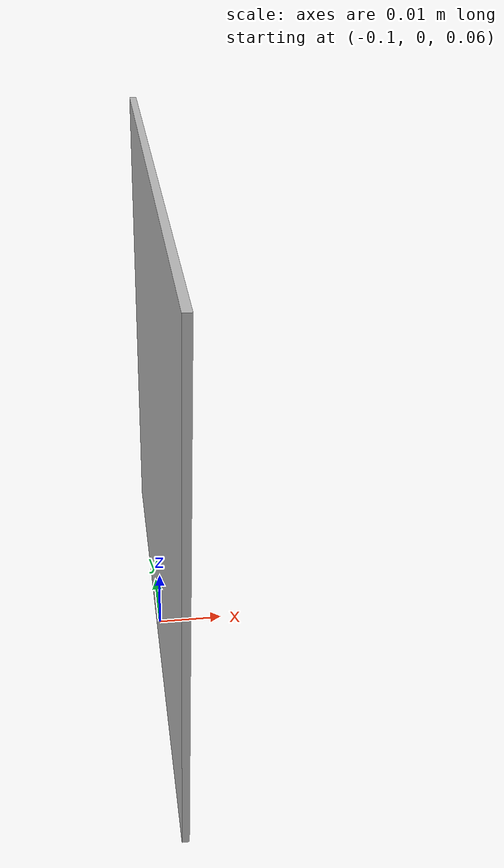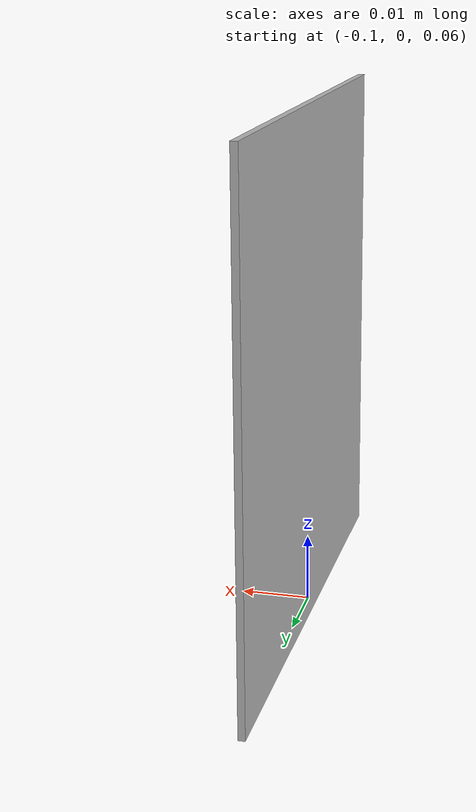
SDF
<?xml version='1.0'?>
<sdf version='1.7'>
  <model name='apriltag'>
    <link name='base_footprint'>
      <self_collide>0</self_collide>
      <inertial>
        <pose>0 0 0 0 -0 0</pose>
        <inertia>
          <ixx>1</ixx>
          <ixy>0</ixy>
          <ixz>0</ixz>
          <iyy>1</iyy>
          <iyz>0</iyz>
          <izz>1</izz>
        </inertia>
        <mass>1</mass>
      </inertial>
      <enable_wind>0</enable_wind>
      <kinematic>0</kinematic>
      <pose>0 0 0 0 -0 0</pose>
    </link>
    <link name='base_link'>
      <inertial>
        <pose>-0.032 0 0.07 0 -0 0</pose>
        <inertia>
          <ixx>0.723974</ixx>
          <ixy>4.6864e-10</ixy>
          <ixz>-1.09526e-08</ixz>
          <iyy>0.723974</iyy>
          <iyz>2.85826e-09</iyz>
          <izz>0.65305</izz>
        </inertia>
        <mass>0.825735</mass>
      </inertial>
      <self_collide>0</self_collide>
      <enable_wind>0</enable_wind>
      <kinematic>0</kinematic>
      <pose>0 0 0 0 -0 0</pose>
      <collision name='base_collision'>
        <laser_retro>0</laser_retro>
        <max_contacts>10</max_contacts>
        <pose>-0.032 0 0.07 0 -0 0</pose>
        <geometry>
          <box>
            <size>0.14 0.14 0.14</size>
          </box>
        </geometry>
        <surface>
          <friction>
            <ode>
              <mu>1</mu>
              <mu2>1</mu2>
              <fdir1>0 0 0</fdir1>
              <slip1>0</slip1>
              <slip2>0</slip2>
            </ode>
            <torsional>
              <coefficient>1</coefficient>
              <patch_radius>0</patch_radius>
              <surface_radius>0</surface_radius>
              <use_patch_radius>1</use_patch_radius>
              <ode>
                <slip>0</slip>
              </ode>
            </torsional>
          </friction>
          <bounce>
            <restitution_coefficient>0</restitution_coefficient>
            <threshold>1e+06</threshold>
          </bounce>
          <contact>
            <collide_without_contact>0</collide_without_contact>
            <collide_without_contact_bitmask>1</collide_without_contact_bitmask>
            <collide_bitmask>1</collide_bitmask>
            <ode>
              <soft_cfm>0</soft_cfm>
              <soft_erp>0.2</soft_erp>
              <kp>1e+13</kp>
              <kd>1</kd>
              <max_vel>0.01</max_vel>
              <min_depth>0</min_depth>
            </ode>
            <bullet>
              <split_impulse>1</split_impulse>
              <split_impulse_penetration_threshold>-0.01</split_impulse_penetration_threshold>
              <soft_cfm>0</soft_cfm>
              <soft_erp>0.2</soft_erp>
              <kp>1e+13</kp>
              <kd>1</kd>
            </bullet>
          </contact>
        </surface>
      </collision>
    </link>
    <link name='caster_back_link'>
      <pose>-0.081 -0 -0.004 -1.57 0 0</pose>
      <inertial>
        <mass>0.005</mass>
        <inertia>
          <ixx>0.001</ixx>
          <ixy>0</ixy>
          <ixz>0</ixz>
          <iyy>0.001</iyy>
          <iyz>0</iyz>
          <izz>0.001</izz>
        </inertia>
        <pose>0 0 0 0 -0 0</pose>
      </inertial>
      <self_collide>0</self_collide>
      <enable_wind>0</enable_wind>
      <kinematic>0</kinematic>
      <collision name='collision'>
        <laser_retro>0</laser_retro>
        <max_contacts>10</max_contacts>
        <pose>0 0 0 0 -0 0</pose>
        <geometry>
          <sphere>
            <radius>0.005</radius>
          </sphere>
        </geometry>
        <surface>
          <friction>
            <ode>
              <mu>1</mu>
              <mu2>1</mu2>
              <fdir1>0 0 0</fdir1>
              <slip1>0</slip1>
              <slip2>0</slip2>
            </ode>
            <torsional>
              <coefficient>1</coefficient>
              <patch_radius>0</patch_radius>
              <surface_radius>0</surface_radius>
              <use_patch_radius>1</use_patch_radius>
              <ode>
                <slip>0</slip>
              </ode>
            </torsional>
          </friction>
          <bounce>
            <restitution_coefficient>0</restitution_coefficient>
            <threshold>1e+06</threshold>
          </bounce>
          <contact>
            <collide_without_contact>0</collide_without_contact>
            <collide_without_contact_bitmask>1</collide_without_contact_bitmask>
            <collide_bitmask>1</collide_bitmask>
            <ode>
              <soft_cfm>0</soft_cfm>
              <soft_erp>0.2</soft_erp>
              <kp>100000</kp>
              <kd>1</kd>
              <max_vel>0.01</max_vel>
              <min_depth>0.001</min_depth>
            </ode>
            <bullet>
              <split_impulse>1</split_impulse>
              <split_impulse_penetration_threshold>-0.01</split_impulse_penetration_threshold>
              <soft_cfm>0</soft_cfm>
              <soft_erp>0.2</soft_erp>
              <kp>100000</kp>
              <kd>1</kd>
            </bullet>
          </contact>
        </surface>
      </collision>
    </link>
    <link name='wheel_left_link'>
      <inertial>
        <pose>0 0.08 0.023 -1.57 0 0</pose>
        <inertia>
          <ixx>0.00181582</ixx>
          <ixy>-9.3392e-12</ixy>
          <ixz>1.04909e-11</ixz>
          <iyy>0.00329221</iyy>
          <iyz>5.75694e-11</iyz>
          <izz>0.00181582</izz>
        </inertia>
        <mass>0.0284989</mass>
      </inertial>
      <self_collide>0</self_collide>
      <enable_wind>0</enable_wind>
      <kinematic>0</kinematic>
      <pose>0 0 0 0 -0 0</pose>
      <collision name='wheel_left_collision'>
        <laser_retro>0</laser_retro>
        <max_contacts>10</max_contacts>
        <pose>0 0.08 0.023 -1.57 0 0</pose>
        <geometry>
          <cylinder>
            <radius>0.033</radius>
            <length>0.018</length>
          </cylinder>
        </geometry>
        <surface>
          <friction>
            <ode>
              <mu>100000</mu>
              <mu2>100000</mu2>
              <fdir1>0 0 0</fdir1>
              <slip1>0</slip1>
              <slip2>0</slip2>
            </ode>
            <torsional>
              <coefficient>1</coefficient>
              <patch_radius>0</patch_radius>
              <surface_radius>0</surface_radius>
              <use_patch_radius>1</use_patch_radius>
              <ode>
                <slip>0</slip>
              </ode>
            </torsional>
          </friction>
          <bounce>
            <restitution_coefficient>0</restitution_coefficient>
            <threshold>1e+06</threshold>
          </bounce>
          <contact>
            <collide_without_contact>0</collide_without_contact>
            <collide_without_contact_bitmask>1</collide_without_contact_bitmask>
            <collide_bitmask>1</collide_bitmask>
            <ode>
              <soft_cfm>0</soft_cfm>
              <soft_erp>0.2</soft_erp>
              <kp>100000</kp>
              <kd>1</kd>
              <max_vel>0.01</max_vel>
              <min_depth>0.001</min_depth>
            </ode>
            <bullet>
              <split_impulse>1</split_impulse>
              <split_impulse_penetration_threshold>-0.01</split_impulse_penetration_threshold>
              <soft_cfm>0</soft_cfm>
              <soft_erp>0.2</soft_erp>
              <kp>100000</kp>
              <kd>1</kd>
            </bullet>
          </contact>
        </surface>
      </collision>
    </link>
    <link name='wheel_right_link'>
      <inertial>
        <pose>0 -0.08 0.023 -1.57 0 0</pose>
        <inertia>
          <ixx>0.00181582</ixx>
          <ixy>-9.3392e-12</ixy>
          <ixz>1.04909e-11</ixz>
          <iyy>0.00329221</iyy>
          <iyz>5.75694e-11</iyz>
          <izz>0.00181582</izz>
        </inertia>
        <mass>0.0284989</mass>
      </inertial>
      <self_collide>0</self_collide>
      <enable_wind>0</enable_wind>
      <kinematic>0</kinematic>
      <pose>0 0 0 0 -0 0</pose>
      <collision name='wheel_right_collision'>
        <laser_retro>0</laser_retro>
        <max_contacts>10</max_contacts>
        <pose>0 -0.08 0.023 -1.57 0 0</pose>
        <geometry>
          <cylinder>
            <radius>0.033</radius>
            <length>0.018</length>
          </cylinder>
        </geometry>
        <surface>
          <friction>
            <ode>
              <mu>100000</mu>
              <mu2>100000</mu2>
              <fdir1>0 0 0</fdir1>
              <slip1>0</slip1>
              <slip2>0</slip2>
            </ode>
            <torsional>
              <coefficient>1</coefficient>
              <patch_radius>0</patch_radius>
              <surface_radius>0</surface_radius>
              <use_patch_radius>1</use_patch_radius>
              <ode>
                <slip>0</slip>
              </ode>
            </torsional>
          </friction>
          <bounce>
            <restitution_coefficient>0</restitution_coefficient>
            <threshold>1e+06</threshold>
          </bounce>
          <contact>
            <collide_without_contact>0</collide_without_contact>
            <collide_without_contact_bitmask>1</collide_without_contact_bitmask>
            <collide_bitmask>1</collide_bitmask>
            <ode>
              <soft_cfm>0</soft_cfm>
              <soft_erp>0.2</soft_erp>
              <kp>100000</kp>
              <kd>1</kd>
              <max_vel>0.01</max_vel>
              <min_depth>0.001</min_depth>
            </ode>
            <bullet>
              <split_impulse>1</split_impulse>
              <split_impulse_penetration_threshold>-0.01</split_impulse_penetration_threshold>
              <soft_cfm>0</soft_cfm>
              <soft_erp>0.2</soft_erp>
              <kp>100000</kp>
              <kd>1</kd>
            </bullet>
          </contact>
        </surface>
      </collision>
    </link>
    <link name="marker_link">
      <pose>-0.1 0 0.096 0 0 -1.570796</pose>
      <inertial>
        <pose>0 0 0 0 0 0</pose>
        <inertia>
          <ixx>0.001</ixx>
          <ixy>0</ixy>
          <ixz>0</ixz>
          <iyy>0.001</iyy>
          <iyz>0</iyz>
          <izz>0.001</izz>
        </inertia>
        <mass>0.001</mass>
      </inertial>
      <collision name="marker_collision">
        <geometry>
          <box>
            <size>0.0762 0.001 0.0762</size>
          </box>
        </geometry>
      </collision>
      <visual name="marker_visual">
        <geometry>
          <box>
            <size>0.0762 0.001 0.0762</size>
          </box>
        </geometry>
        <material>
          <script>
            <uri>model://marker</uri>
            <name>marker</name>
          </script>
        </material>
      </visual>
    </link>
    <joint name='marker_joint' type='fixed'>
      <parent>base_footprint</parent>
      <child>marker_link</child>
      <pose>0 0 0 0 0 0</pose>
      <physics>
        <ode>
          <limit>
            <cfm>0</cfm>
            <erp>0.0</erp>
          </limit>
          <suspension>
            <cfm>0</cfm>
            <erp>0.0</erp>
          </suspension>
        </ode>
      </physics>
    </joint>
    <joint name='base_joint' type='fixed'>
      <parent>base_footprint</parent>
      <child>base_link</child>
      <pose>0 0 0.01 0 -0 0</pose>
      <physics>
        <ode>
          <limit>
            <cfm>0</cfm>
            <erp>0.2</erp>
          </limit>
          <suspension>
            <cfm>0</cfm>
            <erp>0.2</erp>
          </suspension>
        </ode>
      </physics>
    </joint>
    <joint name='caster_back_joint' type='ball'>
      <parent>base_link</parent>
      <child>caster_back_link</child>
      <pose>0 0 0 0 -0 0</pose>
      <physics>
        <ode>
          <limit>
            <cfm>0</cfm>
            <erp>0.2</erp>
          </limit>
          <suspension>
            <cfm>0</cfm>
            <erp>0.2</erp>
          </suspension>
        </ode>
      </physics>
    </joint>
    <joint name='wheel_left_joint' type='revolute'>
      <parent>base_link</parent>
      <child>wheel_left_link</child>
      <pose>0 0.08 0.023 -1.57 0 0</pose>
      <axis>
        <xyz>0 0 1</xyz>
        <limit>
          <lower>-1e+16</lower>
          <upper>1e+16</upper>
          <effort>-1</effort>
          <velocity>-1</velocity>
        </limit>
        <dynamics>
          <spring_reference>0</spring_reference>
          <spring_stiffness>0</spring_stiffness>
          <damping>0</damping>
          <friction>0</friction>
        </dynamics>
      </axis>
      <physics>
        <ode>
          <limit>
            <cfm>0</cfm>
            <erp>0.2</erp>
          </limit>
          <suspension>
            <cfm>0</cfm>
            <erp>0.2</erp>
          </suspension>
        </ode>
      </physics>
    </joint>
    <joint name='wheel_right_joint' type='revolute'>
      <parent>base_link</parent>
      <child>wheel_right_link</child>
      <pose>0 -0.08 0.023 -1.57 0 0</pose>
      <axis>
        <xyz>0 0 1</xyz>
        <limit>
          <lower>-1e+16</lower>
          <upper>1e+16</upper>
          <effort>-1</effort>
          <velocity>-1</velocity>
        </limit>
        <dynamics>
          <spring_reference>0</spring_reference>
          <spring_stiffness>0</spring_stiffness>
          <damping>0</damping>
          <friction>0</friction>
        </dynamics>
      </axis>
      <physics>
        <ode>
          <limit>
            <cfm>0</cfm>
            <erp>0.2</erp>
          </limit>
          <suspension>
            <cfm>0</cfm>
            <erp>0.2</erp>
          </suspension>
        </ode>
      </physics>
    </joint>
    <static>0</static>
    <allow_auto_disable>1</allow_auto_disable>
    <plugin name='apriltag_diff_drive' filename='libgazebo_ros_diff_drive.so'>
      <update_rate>30</update_rate>
      <left_joint>wheel_left_joint</left_joint>
      <right_joint>wheel_right_joint</right_joint>
      <wheel_separation>0.160</wheel_separation>
      <wheel_diameter>0.066</wheel_diameter>
      <max_wheel_torque>20</max_wheel_torque>
      <max_wheel_acceleration>1.0</max_wheel_acceleration>
      <command_topic>cmd_vel</command_topic>
      <publish_odom>0</publish_odom>
      <publish_odom_tf>0</publish_odom_tf>
      <publish_wheel_tf>0</publish_wheel_tf>
      <odometry_topic>odom</odometry_topic>
      <odometry_frame>odom</odometry_frame>
      <robot_base_frame>base_footprint</robot_base_frame>
      <ros>
        <remapping>cmd_vel:=apriltag/cmd_vel</remapping>
      </ros>
    </plugin>
    <plugin name='apriltag_joint_state' filename='libgazebo_ros_joint_state_publisher.so'>
      <ros>
        <remapping>~/out:=joint_states</remapping>
      </ros>
      <update_rate>30</update_rate>
      <joint_name>wheel_left_joint</joint_name>
      <joint_name>wheel_right_joint</joint_name>
    </plugin>
  </model>
</sdf>
